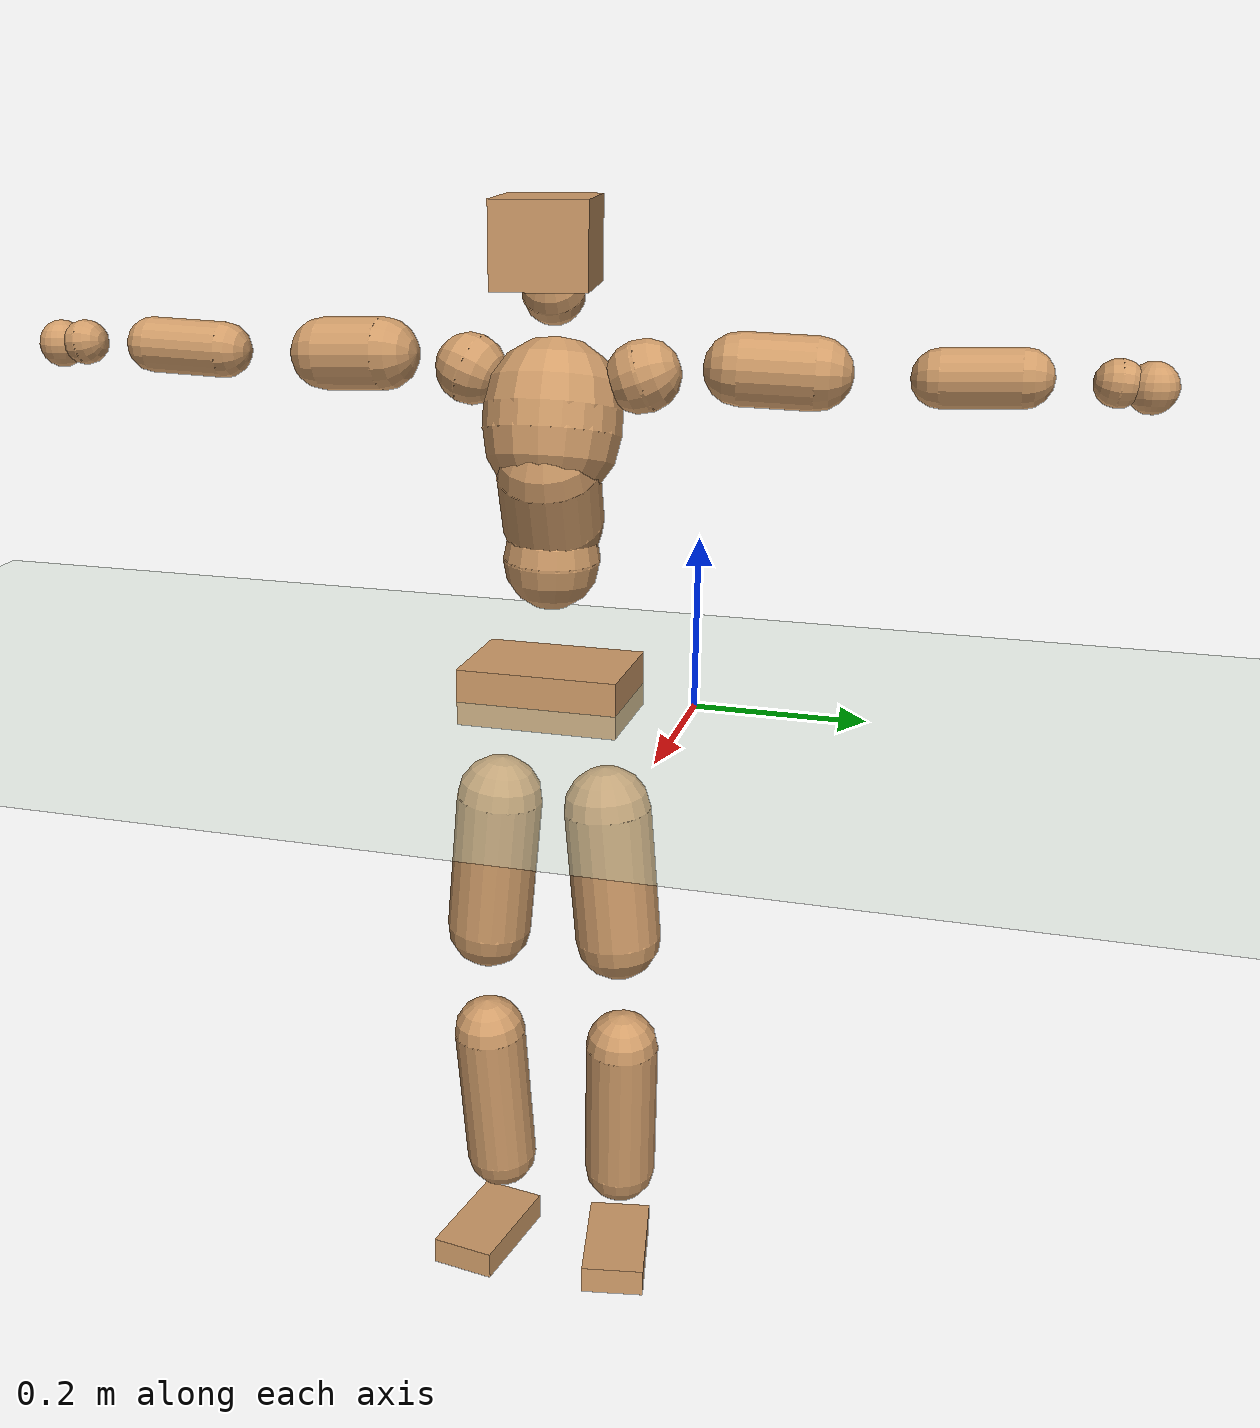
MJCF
<mujoco model="humanoid">
  <compiler coordinate="local" angle="radian"/>
  <default>
    <joint damping="0.0" armature="0.01" stiffness="0.0" limited="true"/>
    <geom conaffinity="1" condim="3" contype="7" margin="0.001" rgba="0.8 0.6 .4 1"/>
  </default>
  <asset>
    <texture type="skybox" builtin="gradient" rgb1=".4 .5 .6" rgb2="0 0 0" width="100" height="100"/>
    <texture builtin="flat" height="1278" mark="cross" markrgb="1 1 1" name="texgeom" random="0.01" rgb1="0.8 0.6 0.4" rgb2="0.8 0.6 0.4" type="cube" width="127"/>
    <texture builtin="checker" height="100" name="texplane" rgb1="0 0 0" rgb2="0.8 0.8 0.8" type="2d" width="100"/>
    <material name="MatPlane" reflectance="0.5" shininess="1" specular="1" texrepeat="60 60" texture="texplane"/>
    <material name="geom" texture="texgeom" texuniform="true"/>
  </asset>
  <worldbody>
    <light cutoff="100" diffuse="1 1 1" dir="-0 0 -1.3" directional="true" exponent="1" pos="0 0 1.3" specular=".1 .1 .1"/>
    <geom conaffinity="1" condim="3" name="floor" pos="0 0 0" rgba="0.8 0.9 0.8 1" size="100 100 .2" type="plane" material="MatPlane"/>
    <body name="Pelvis" pos="-0.0008 -0.1784 0.0155">
      <freejoint name="Pelvis"/>
      <geom type="box" contype="1" conaffinity="1" density="5359.375383" pos="-0.0056 -0.0000 -0.0116" size="0.0667 0.0973 0.034" quat="1.0000 0.0000 0.0000 0.0001" name="Pelvis"/>
      <body name="L_Hip" pos="-0.0127 0.062 -0.0805">
        <joint name="L_Hip_x" type="hinge" pos="0 0 0" axis="1 0 0" stiffness="1600" damping="160" armature="0.02" range="-180.0000 180.0000"/>
        <joint name="L_Hip_y" type="hinge" pos="0 0 0" axis="0 1 0" stiffness="1600" damping="160" armature="0.02" range="-180.0000 180.0000"/>
        <joint name="L_Hip_z" type="hinge" pos="0 0 0" axis="0 0 1" stiffness="1600" damping="160" armature="0.02" range="-180.0000 180.0000"/>
        <geom type="capsule" contype="1" conaffinity="1" density="2040.816327" size="0.0541" fromto="-0.0005 0.0074 -0.0838 -0.0016 0.0226 -0.2566" name="L_Hip"/>
        <body name="L_Knee" pos="-0.0021 0.0299 -0.3404">
          <joint name="L_Knee_x" type="hinge" pos="0 0 0" axis="1 0 0" stiffness="1600" damping="160" armature="0.02" range="-180.0000 180.0000"/>
          <joint name="L_Knee_y" type="hinge" pos="0 0 0" axis="0 1 0" stiffness="1600" damping="160" armature="0.02" range="-180.0000 180.0000"/>
          <joint name="L_Knee_z" type="hinge" pos="0 0 0" axis="0 0 1" stiffness="1600" damping="160" armature="0.02" range="-180.0000 180.0000"/>
          <geom type="capsule" contype="1" conaffinity="1" density="1234.567901" size="0.0467" fromto="-0.0081 -0.0023 -0.0762 -0.0289 -0.0082 -0.2736" name="L_Knee"/>
          <body name="L_Ankle" pos="-0.037 -0.0105 -0.3498">
            <joint name="L_Ankle_x" type="hinge" pos="0 0 0" axis="1 0 0" stiffness="1600" damping="160" armature="0.02" range="-180.0000 180.0000"/>
            <joint name="L_Ankle_y" type="hinge" pos="0 0 0" axis="0 1 0" stiffness="1600" damping="160" armature="0.02" range="-180.0000 180.0000"/>
            <joint name="L_Ankle_z" type="hinge" pos="0 0 0" axis="0 0 1" stiffness="1600" damping="160" armature="0.02" range="-180.0000 180.0000"/>
            <geom type="box" contype="1" conaffinity="1" density="1000.000028" pos="0.0522 0.0099 -0.0243" size="0.075 0.0402 0.018" quat="0.9956 0.0000 0.0000 0.0934" name="L_Ankle"/>
            <body name="L_Toe" pos="0.1043 0.0197 -0.0487">
              <joint name="L_Toe_x" type="hinge" pos="0 0 0" axis="1 0 0" stiffness="1000" damping="100" armature="0.02" range="-180.0000 180.0000"/>
              <joint name="L_Toe_y" type="hinge" pos="0 0 0" axis="0 1 0" stiffness="1000" damping="100" armature="0.02" range="-180.0000 180.0000"/>
              <joint name="L_Toe_z" type="hinge" pos="0 0 0" axis="0 0 1" stiffness="1000" damping="100" armature="0.02" range="-180.0000 180.0000"/>
              <geom type="box" contype="1" conaffinity="1" density="8438727.259688" pos="0.0000 0.0000 0.0241" size="0.0008 0.002 0.0009" quat="0.9949 0.0000 0.0000 0.1007" name="L_Toe"/>
            </body>
          </body>
        </body>
      </body>
      <body name="R_Hip" pos="-0.0095 -0.0609 -0.0795">
        <joint name="R_Hip_x" type="hinge" pos="0 0 0" axis="1 0 0" stiffness="1600" damping="160" armature="0.02" range="-180.0000 180.0000"/>
        <joint name="R_Hip_y" type="hinge" pos="0 0 0" axis="0 1 0" stiffness="1600" damping="160" armature="0.02" range="-180.0000 180.0000"/>
        <joint name="R_Hip_z" type="hinge" pos="0 0 0" axis="0 0 1" stiffness="1600" damping="160" armature="0.02" range="-180.0000 180.0000"/>
        <geom type="capsule" contype="1" conaffinity="1" density="2040.816327" size="0.0535" fromto="-0.0011 -0.0080 -0.0831 -0.0034 -0.0252 -0.2636" name="R_Hip"/>
        <body name="R_Knee" pos="-0.0045 -0.0332 -0.3467">
          <joint name="R_Knee_x" type="hinge" pos="0 0 0" axis="1 0 0" stiffness="1600" damping="160" armature="0.02" range="-180.0000 180.0000"/>
          <joint name="R_Knee_y" type="hinge" pos="0 0 0" axis="0 1 0" stiffness="1600" damping="160" armature="0.02" range="-180.0000 180.0000"/>
          <joint name="R_Knee_z" type="hinge" pos="0 0 0" axis="0 0 1" stiffness="1600" damping="160" armature="0.02" range="-180.0000 180.0000"/>
          <geom type="capsule" contype="1" conaffinity="1" density="1234.567901" size="0.0471" fromto="-0.0077 0.0030 -0.0766 -0.0275 0.0106 -0.2738" name="R_Knee"/>
          <body name="R_Ankle" pos="-0.0352 0.0136 -0.3504">
            <joint name="R_Ankle_x" type="hinge" pos="0 0 0" axis="1 0 0" stiffness="1600" damping="160" armature="0.02" range="-180.0000 180.0000"/>
            <joint name="R_Ankle_y" type="hinge" pos="0 0 0" axis="0 1 0" stiffness="1600" damping="160" armature="0.02" range="-180.0000 180.0000"/>
            <joint name="R_Ankle_z" type="hinge" pos="0 0 0" axis="0 0 1" stiffness="1600" damping="160" armature="0.02" range="-180.0000 180.0000"/>
            <geom type="box" contype="1" conaffinity="1" density="999.999984" pos="0.0534 -0.0085 -0.0208" size="0.0759 0.0414 0.0177" quat="0.9969 0.0000 0.0000 -0.0787" name="R_Ankle"/>
            <body name="R_Toe" pos="0.1069 -0.017 -0.0415">
              <joint name="R_Toe_x" type="hinge" pos="0 0 0" axis="1 0 0" stiffness="1000" damping="100" armature="0.02" range="-180.0000 180.0000"/>
              <joint name="R_Toe_y" type="hinge" pos="0 0 0" axis="0 1 0" stiffness="1000" damping="100" armature="0.02" range="-180.0000 180.0000"/>
              <joint name="R_Toe_z" type="hinge" pos="0 0 0" axis="0 0 1" stiffness="1000" damping="100" armature="0.02" range="-180.0000 180.0000"/>
              <geom type="box" contype="1" conaffinity="1" density="8337998.265409" pos="0.0000 0.0000 0.0216" size="0.0008 0.0021 0.0009" quat="0.9977 0.0000 0.0000 -0.0683" name="R_Toe"/>
            </body>
          </body>
        </body>
      </body>
      <body name="Torso" pos="-0.0112 -0.0012 0.0903">
        <joint name="Torso_x" type="hinge" pos="0 0 0" axis="1 0 0" stiffness="2000" damping="200" armature="0.02" range="-180.0000 180.0000"/>
        <joint name="Torso_y" type="hinge" pos="0 0 0" axis="0 1 0" stiffness="2000" damping="200" armature="0.02" range="-180.0000 180.0000"/>
        <joint name="Torso_z" type="hinge" pos="0 0 0" axis="0 0 1" stiffness="2000" damping="200" armature="0.02" range="-180.0000 180.0000"/>
        <geom type="capsule" contype="1" conaffinity="1" density="2040.816327" size="0.0573" fromto="0.0018 0.0011 0.0573 0.0017 0.0010 0.0539" name="Torso"/>
        <body name="Spine" pos="0.0034 0.0021 0.1111">
          <joint name="Spine_x" type="hinge" pos="0 0 0" axis="1 0 0" stiffness="2000" damping="200" armature="0.02" range="-180.0000 180.0000"/>
          <joint name="Spine_y" type="hinge" pos="0 0 0" axis="0 1 0" stiffness="2000" damping="200" armature="0.02" range="-180.0000 180.0000"/>
          <joint name="Spine_z" type="hinge" pos="0 0 0" axis="0 0 1" stiffness="2000" damping="200" armature="0.02" range="-180.0000 180.0000"/>
          <geom type="capsule" contype="1" conaffinity="1" density="2040.816327" size="0.0599" fromto="0.0263 0.0030 0.0538 -0.0055 -0.0006 -0.0112" name="Spine"/>
          <body name="Chest" pos="0.0208 0.0024 0.0425">
            <joint name="Chest_x" type="hinge" pos="0 0 0" axis="1 0 0" stiffness="2000" damping="200" armature="0.02" range="-180.0000 180.0000"/>
            <joint name="Chest_y" type="hinge" pos="0 0 0" axis="0 1 0" stiffness="2000" damping="200" armature="0.02" range="-180.0000 180.0000"/>
            <joint name="Chest_z" type="hinge" pos="0 0 0" axis="0 0 1" stiffness="2000" damping="200" armature="0.02" range="-180.0000 180.0000"/>
            <geom type="capsule" contype="1" conaffinity="1" density="2040.816327" size="0.0805" fromto="-0.0224 -0.0010 0.0773 -0.0144 -0.0006 0.0495" name="Chest"/>
            <body name="Neck" pos="-0.0427 -0.0021 0.1778">
              <joint name="Neck_x" type="hinge" pos="0 0 0" axis="1 0 0" stiffness="1000" damping="100" armature="0.02" range="-180.0000 180.0000"/>
              <joint name="Neck_y" type="hinge" pos="0 0 0" axis="0 1 0" stiffness="1000" damping="100" armature="0.02" range="-180.0000 180.0000"/>
              <joint name="Neck_z" type="hinge" pos="0 0 0" axis="0 0 1" stiffness="1000" damping="100" armature="0.02" range="-180.0000 180.0000"/>
              <geom type="capsule" contype="1" conaffinity="1" density="1000" size="0.0359" fromto="0.0223 0.0026 0.0271 0.0235 0.0027 0.0286" name="Neck"/>
              <body name="Head" pos="0.0458 0.0053 0.0557">
                <joint name="Head_x" type="hinge" pos="0 0 0" axis="1 0 0" stiffness="1000" damping="100" armature="0.02" range="-180.0000 180.0000"/>
                <joint name="Head_y" type="hinge" pos="0 0 0" axis="0 1 0" stiffness="1000" damping="100" armature="0.02" range="-180.0000 180.0000"/>
                <joint name="Head_z" type="hinge" pos="0 0 0" axis="0 0 1" stiffness="1000" damping="100" armature="0.02" range="-180.0000 180.0000"/>
                <geom type="box" contype="1" conaffinity="1" density="2250.000102" pos="0.0239 0.0037 0.0289" size="0.0679 0.0531 0.0466" quat="0.9971 0.0000 0.0000 0.0759" name="Head"/>
              </body>
            </body>
            <body name="L_Thorax" pos="-0.0318 0.064 0.102">
              <joint name="L_Thorax_x" type="hinge" pos="0 0 0" axis="1 0 0" stiffness="1000" damping="100" armature="0.02" range="-180.0000 180.0000"/>
              <joint name="L_Thorax_y" type="hinge" pos="0 0 0" axis="0 1 0" stiffness="1000" damping="100" armature="0.02" range="-180.0000 180.0000"/>
              <joint name="L_Thorax_z" type="hinge" pos="0 0 0" axis="0 0 1" stiffness="1000" damping="100" armature="0.02" range="-180.0000 180.0000"/>
              <geom type="capsule" contype="1" conaffinity="1" density="1000" size="0.0414" fromto="-0.0024 0.0387 0.0144 -0.0021 0.0345 0.0128" name="L_Thorax"/>
              <body name="L_Shoulder" pos="-0.0045 0.0732 0.0272">
                <joint name="L_Shoulder_x" type="hinge" pos="0 0 0" axis="1 0 0" stiffness="1000" damping="100" armature="0.02" range="-720.0000 720.0000"/>
                <joint name="L_Shoulder_y" type="hinge" pos="0 0 0" axis="0 1 0" stiffness="1000" damping="100" armature="0.02" range="-720.0000 720.0000"/>
                <joint name="L_Shoulder_z" type="hinge" pos="0 0 0" axis="0 0 1" stiffness="1000" damping="100" armature="0.02" range="-720.0000 720.0000"/>
                <geom type="capsule" contype="1" conaffinity="1" density="1000" size="0.0408" fromto="-0.0066 0.0704 -0.0025 -0.0146 0.1554 -0.0054" name="L_Shoulder"/>
                <body name="L_Elbow" pos="-0.0212 0.2258 -0.0079">
                  <joint name="L_Elbow_x" type="hinge" pos="0 0 0" axis="1 0 0" stiffness="1000" damping="100" armature="0.02" range="-720.0000 720.0000"/>
                  <joint name="L_Elbow_y" type="hinge" pos="0 0 0" axis="0 1 0" stiffness="1000" damping="100" armature="0.02" range="-720.0000 720.0000"/>
                  <joint name="L_Elbow_z" type="hinge" pos="0 0 0" axis="0 0 1" stiffness="1000" damping="100" armature="0.02" range="-720.0000 720.0000"/>
                  <geom type="capsule" contype="1" conaffinity="1" density="1000" size="0.0329" fromto="-0.0008 0.0629 0.0023 -0.0020 0.1500 0.0054" name="L_Elbow"/>
                  <body name="L_Wrist" pos="-0.0028 0.2129 0.0077">
                    <joint name="L_Wrist_x" type="hinge" pos="0 0 0" axis="1 0 0" stiffness="600" damping="60" armature="0.02" range="-180.0000 180.0000"/>
                    <joint name="L_Wrist_y" type="hinge" pos="0 0 0" axis="0 1 0" stiffness="600" damping="60" armature="0.02" range="-180.0000 180.0000"/>
                    <joint name="L_Wrist_z" type="hinge" pos="0 0 0" axis="0 0 1" stiffness="600" damping="60" armature="0.02" range="-180.0000 180.0000"/>
                    <geom type="capsule" contype="1" conaffinity="1" density="1000" size="0.0261" fromto="-0.0057 0.0336 -0.0041 -0.0060 0.0356 -0.0043" name="L_Wrist"/>
                    <body name="L_Hand" pos="-0.0118 0.0693 -0.0084">
                      <joint name="L_Hand_x" type="hinge" pos="0 0 0" axis="1 0 0" stiffness="600" damping="60" armature="0.02" range="-180.0000 180.0000"/>
                      <joint name="L_Hand_y" type="hinge" pos="0 0 0" axis="0 1 0" stiffness="600" damping="60" armature="0.02" range="-180.0000 180.0000"/>
                      <joint name="L_Hand_z" type="hinge" pos="0 0 0" axis="0 0 1" stiffness="600" damping="60" armature="0.02" range="-180.0000 180.0000"/>
                      <geom type="sphere" contype="1" conaffinity="1" density="1000" size="0.0280" pos="0.0000 0.0000 0.0000" name="L_Hand"/>
                    </body>
                  </body>
                </body>
              </body>
            </body>
            <body name="R_Thorax" pos="-0.0358 -0.0667 0.1006">
              <joint name="R_Thorax_x" type="hinge" pos="0 0 0" axis="1 0 0" stiffness="1000" damping="100" armature="0.02" range="-180.0000 180.0000"/>
              <joint name="R_Thorax_y" type="hinge" pos="0 0 0" axis="0 1 0" stiffness="1000" damping="100" armature="0.02" range="-180.0000 180.0000"/>
              <joint name="R_Thorax_z" type="hinge" pos="0 0 0" axis="0 0 1" stiffness="1000" damping="100" armature="0.02" range="-180.0000 180.0000"/>
              <geom type="capsule" contype="1" conaffinity="1" density="1000" size="0.0409" fromto="-0.0040 -0.0378 0.0143 -0.0042 -0.0396 0.0150" name="R_Thorax"/>
              <body name="R_Shoulder" pos="-0.0081 -0.0774 0.0293">
                <joint name="R_Shoulder_x" type="hinge" pos="0 0 0" axis="1 0 0" stiffness="1000" damping="100" armature="0.02" range="-720.0000 720.0000"/>
                <joint name="R_Shoulder_y" type="hinge" pos="0 0 0" axis="0 1 0" stiffness="1000" damping="100" armature="0.02" range="-720.0000 720.0000"/>
                <joint name="R_Shoulder_z" type="hinge" pos="0 0 0" axis="0 0 1" stiffness="1000" damping="100" armature="0.02" range="-720.0000 720.0000"/>
                <geom type="capsule" contype="1" conaffinity="1" density="1000" size="0.0424" fromto="-0.0048 -0.0722 -0.0032 -0.0098 -0.1481 -0.0066" name="R_Shoulder"/>
                <body name="R_Elbow" pos="-0.0146 -0.2203 -0.0098">
                  <joint name="R_Elbow_x" type="hinge" pos="0 0 0" axis="1 0 0" stiffness="1000" damping="100" armature="0.02" range="-720.0000 720.0000"/>
                  <joint name="R_Elbow_y" type="hinge" pos="0 0 0" axis="0 1 0" stiffness="1000" damping="100" armature="0.02" range="-720.0000 720.0000"/>
                  <joint name="R_Elbow_z" type="hinge" pos="0 0 0" axis="0 0 1" stiffness="1000" damping="100" armature="0.02" range="-720.0000 720.0000"/>
                  <geom type="capsule" contype="1" conaffinity="1" density="1000" size="0.0332" fromto="-0.0019 -0.0632 0.0017 -0.0049 -0.1595 0.0042" name="R_Elbow"/>
                  <body name="R_Wrist" pos="-0.0069 -0.2227 0.0059">
                    <joint name="R_Wrist_x" type="hinge" pos="0 0 0" axis="1 0 0" stiffness="600" damping="60" armature="0.02" range="-180.0000 180.0000"/>
                    <joint name="R_Wrist_y" type="hinge" pos="0 0 0" axis="0 1 0" stiffness="600" damping="60" armature="0.02" range="-180.0000 180.0000"/>
                    <joint name="R_Wrist_z" type="hinge" pos="0 0 0" axis="0 0 1" stiffness="600" damping="60" armature="0.02" range="-180.0000 180.0000"/>
                    <geom type="capsule" contype="1" conaffinity="1" density="1000" size="0.0272" fromto="-0.0045 -0.0345 -0.0031 -0.0047 -0.0365 -0.0033" name="R_Wrist"/>
                    <body name="R_Hand" pos="-0.0092 -0.071 -0.0065">
                      <joint name="R_Hand_x" type="hinge" pos="0 0 0" axis="1 0 0" stiffness="600" damping="60" armature="0.02" range="-180.0000 180.0000"/>
                      <joint name="R_Hand_y" type="hinge" pos="0 0 0" axis="0 1 0" stiffness="600" damping="60" armature="0.02" range="-180.0000 180.0000"/>
                      <joint name="R_Hand_z" type="hinge" pos="0 0 0" axis="0 0 1" stiffness="600" damping="60" armature="0.02" range="-180.0000 180.0000"/>
                      <geom type="sphere" contype="1" conaffinity="1" density="1000" size="0.0287" pos="0.0000 0.0000 0.0000" name="R_Hand"/>
                    </body>
                  </body>
                </body>
              </body>
            </body>
          </body>
        </body>
      </body>
    </body>
  </worldbody>
  <actuator>
    <motor name="L_Hip_x" joint="L_Hip_x" gear="500"/>
    <motor name="L_Hip_y" joint="L_Hip_y" gear="500"/>
    <motor name="L_Hip_z" joint="L_Hip_z" gear="500"/>
    <motor name="L_Knee_x" joint="L_Knee_x" gear="500"/>
    <motor name="L_Knee_y" joint="L_Knee_y" gear="500"/>
    <motor name="L_Knee_z" joint="L_Knee_z" gear="500"/>
    <motor name="L_Ankle_x" joint="L_Ankle_x" gear="500"/>
    <motor name="L_Ankle_y" joint="L_Ankle_y" gear="500"/>
    <motor name="L_Ankle_z" joint="L_Ankle_z" gear="500"/>
    <motor name="L_Toe_x" joint="L_Toe_x" gear="500"/>
    <motor name="L_Toe_y" joint="L_Toe_y" gear="500"/>
    <motor name="L_Toe_z" joint="L_Toe_z" gear="500"/>
    <motor name="R_Hip_x" joint="R_Hip_x" gear="500"/>
    <motor name="R_Hip_y" joint="R_Hip_y" gear="500"/>
    <motor name="R_Hip_z" joint="R_Hip_z" gear="500"/>
    <motor name="R_Knee_x" joint="R_Knee_x" gear="500"/>
    <motor name="R_Knee_y" joint="R_Knee_y" gear="500"/>
    <motor name="R_Knee_z" joint="R_Knee_z" gear="500"/>
    <motor name="R_Ankle_x" joint="R_Ankle_x" gear="500"/>
    <motor name="R_Ankle_y" joint="R_Ankle_y" gear="500"/>
    <motor name="R_Ankle_z" joint="R_Ankle_z" gear="500"/>
    <motor name="R_Toe_x" joint="R_Toe_x" gear="500"/>
    <motor name="R_Toe_y" joint="R_Toe_y" gear="500"/>
    <motor name="R_Toe_z" joint="R_Toe_z" gear="500"/>
    <motor name="Torso_x" joint="Torso_x" gear="500"/>
    <motor name="Torso_y" joint="Torso_y" gear="500"/>
    <motor name="Torso_z" joint="Torso_z" gear="500"/>
    <motor name="Spine_x" joint="Spine_x" gear="500"/>
    <motor name="Spine_y" joint="Spine_y" gear="500"/>
    <motor name="Spine_z" joint="Spine_z" gear="500"/>
    <motor name="Chest_x" joint="Chest_x" gear="500"/>
    <motor name="Chest_y" joint="Chest_y" gear="500"/>
    <motor name="Chest_z" joint="Chest_z" gear="500"/>
    <motor name="Neck_x" joint="Neck_x" gear="500"/>
    <motor name="Neck_y" joint="Neck_y" gear="500"/>
    <motor name="Neck_z" joint="Neck_z" gear="500"/>
    <motor name="Head_x" joint="Head_x" gear="500"/>
    <motor name="Head_y" joint="Head_y" gear="500"/>
    <motor name="Head_z" joint="Head_z" gear="500"/>
    <motor name="L_Thorax_x" joint="L_Thorax_x" gear="500"/>
    <motor name="L_Thorax_y" joint="L_Thorax_y" gear="500"/>
    <motor name="L_Thorax_z" joint="L_Thorax_z" gear="500"/>
    <motor name="L_Shoulder_x" joint="L_Shoulder_x" gear="500"/>
    <motor name="L_Shoulder_y" joint="L_Shoulder_y" gear="500"/>
    <motor name="L_Shoulder_z" joint="L_Shoulder_z" gear="500"/>
    <motor name="L_Elbow_x" joint="L_Elbow_x" gear="500"/>
    <motor name="L_Elbow_y" joint="L_Elbow_y" gear="500"/>
    <motor name="L_Elbow_z" joint="L_Elbow_z" gear="500"/>
    <motor name="L_Wrist_x" joint="L_Wrist_x" gear="500"/>
    <motor name="L_Wrist_y" joint="L_Wrist_y" gear="500"/>
    <motor name="L_Wrist_z" joint="L_Wrist_z" gear="500"/>
    <motor name="L_Hand_x" joint="L_Hand_x" gear="500"/>
    <motor name="L_Hand_y" joint="L_Hand_y" gear="500"/>
    <motor name="L_Hand_z" joint="L_Hand_z" gear="500"/>
    <motor name="R_Thorax_x" joint="R_Thorax_x" gear="500"/>
    <motor name="R_Thorax_y" joint="R_Thorax_y" gear="500"/>
    <motor name="R_Thorax_z" joint="R_Thorax_z" gear="500"/>
    <motor name="R_Shoulder_x" joint="R_Shoulder_x" gear="500"/>
    <motor name="R_Shoulder_y" joint="R_Shoulder_y" gear="500"/>
    <motor name="R_Shoulder_z" joint="R_Shoulder_z" gear="500"/>
    <motor name="R_Elbow_x" joint="R_Elbow_x" gear="500"/>
    <motor name="R_Elbow_y" joint="R_Elbow_y" gear="500"/>
    <motor name="R_Elbow_z" joint="R_Elbow_z" gear="500"/>
    <motor name="R_Wrist_x" joint="R_Wrist_x" gear="500"/>
    <motor name="R_Wrist_y" joint="R_Wrist_y" gear="500"/>
    <motor name="R_Wrist_z" joint="R_Wrist_z" gear="500"/>
    <motor name="R_Hand_x" joint="R_Hand_x" gear="500"/>
    <motor name="R_Hand_y" joint="R_Hand_y" gear="500"/>
    <motor name="R_Hand_z" joint="R_Hand_z" gear="500"/>
  </actuator>
  <contact>
    <exclude body1="Torso" body2="Chest"/>
    <exclude body1="Head" body2="Chest"/>
    <exclude body1="R_Knee" body2="R_Toe"/>
    <exclude body1="R_Knee" body2="L_Ankle"/>
    <exclude body1="R_Knee" body2="L_Toe"/>
    <exclude body1="L_Knee" body2="L_Toe"/>
    <exclude body1="L_Knee" body2="R_Ankle"/>
    <exclude body1="L_Knee" body2="R_Toe"/>
    <exclude body1="L_Shoulder" body2="Chest"/>
    <exclude body1="R_Shoulder" body2="Chest"/>
  </contact>
  <sensor/>
  <size njmax="700" nconmax="700"/>
</mujoco>
